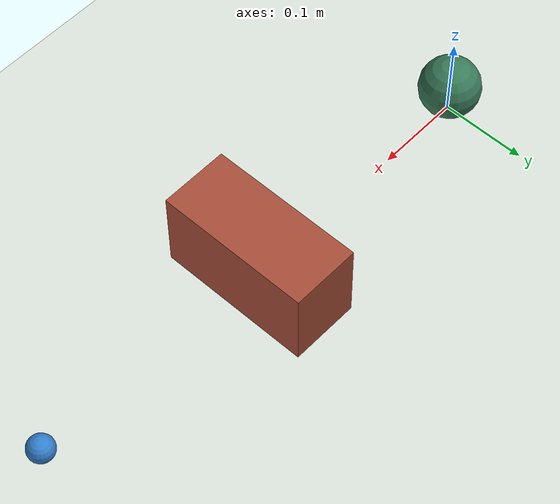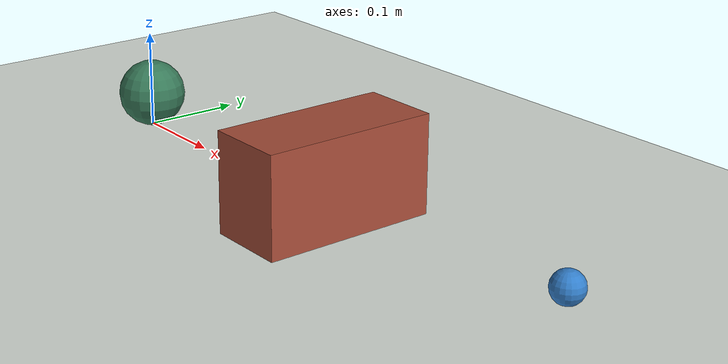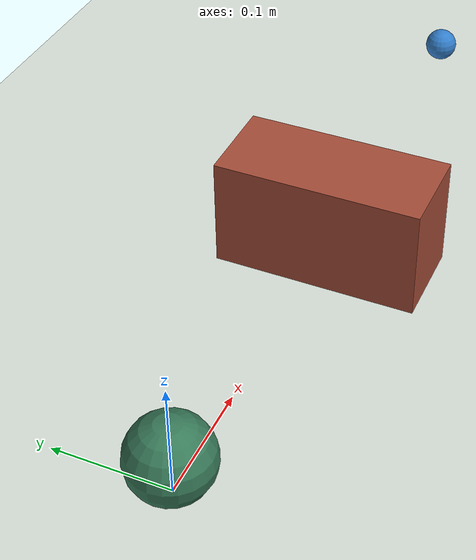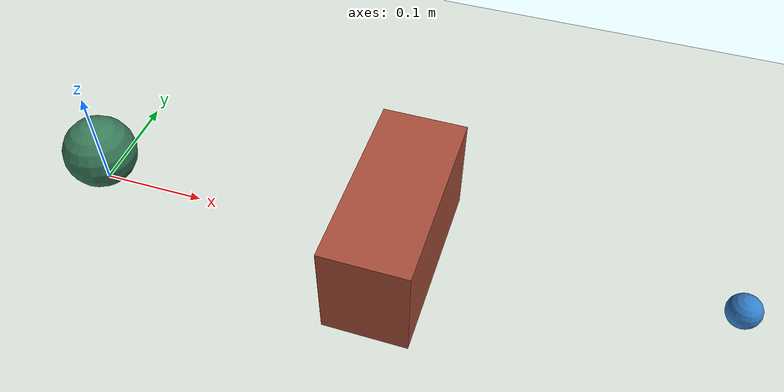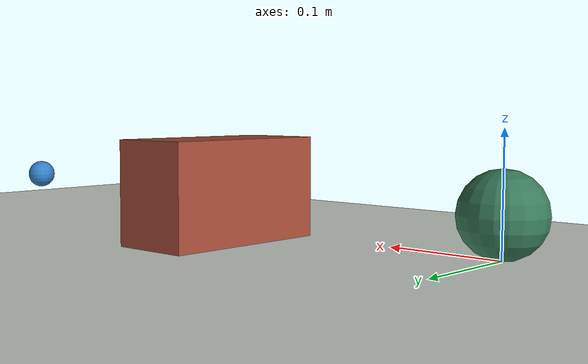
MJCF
<mujoco model="Planar force-controlled teaching actuator">
 <option timestep="0.002" gravity="0 0 0" integrator="implicitfast"/>
 <visual><global offwidth="800" offheight="480"/></visual>
 <worldbody>
  <light pos="0.3 0 2"/>
  <camera name="top" pos=".3 0 1.2" xyaxes="1 0 0 0 1 0"/>
  <geom name="floor" type="plane" pos="0 0 -.02" size="1 1 .01" rgba=".85 .88 .85 1" contype="0" conaffinity="0"/>
  <geom name="wall" type="box" pos=".3 0 .035" size=".04 .09 .05" rgba=".65 .3 .22 1"/>
  <site name="goal" pos=".6 0 .035" size=".015" rgba=".2 .5 .8 1"/>
  <body name="mover" pos="0 0 .035">
   <joint name="x" type="slide" axis="1 0 0" damping="0"/>
   <joint name="y" type="slide" axis="0 1 0" damping="0"/>
   <geom name="ball" type="sphere" size=".035" mass="1" rgba=".22 .48 .35 1"/>
  </body>
 </worldbody>
 <actuator><motor joint="x" ctrllimited="true" ctrlrange="-5 5"/><motor joint="y" ctrllimited="true" ctrlrange="-5 5"/></actuator>
</mujoco>
